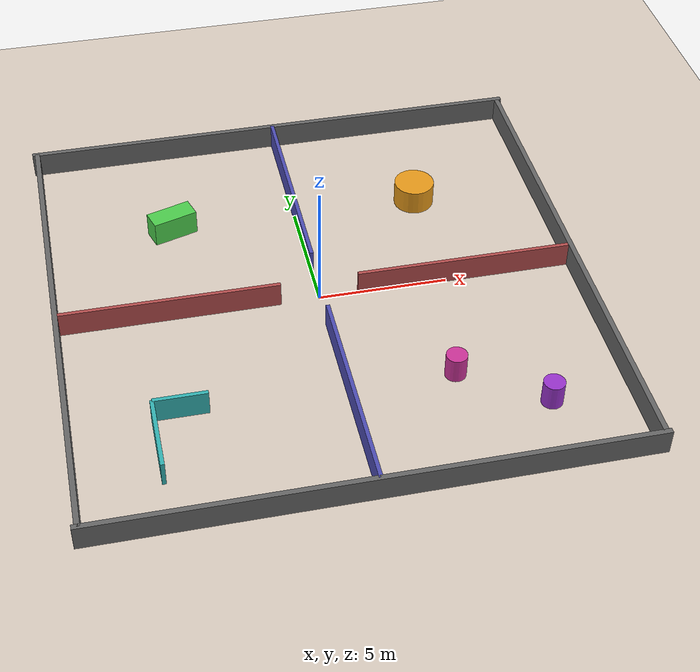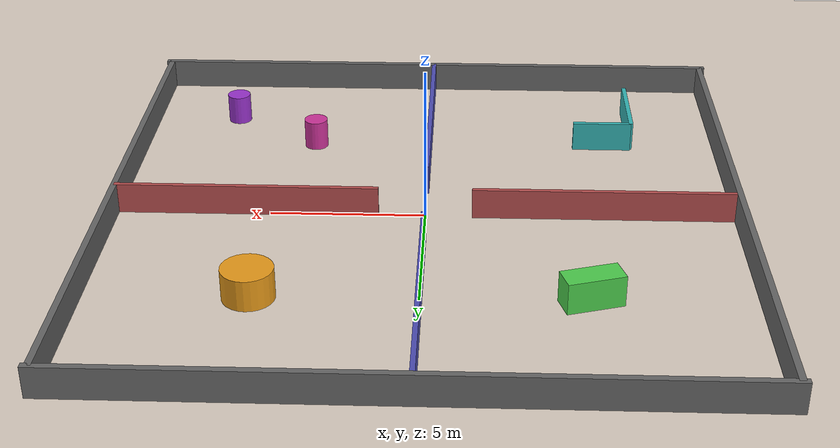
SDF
<?xml version="1.0" ?>
<!-- WORLD: Cross — Plus-sign shape dividing arena into 4 rooms with center hub -->
<sdf version="1.6">
  <world name="default">
    <physics name="1ms" type="ignored"><max_step_size>0.001</max_step_size><real_time_factor>1.0</real_time_factor></physics>
    <plugin filename="libignition-gazebo-physics-system.so" name="ignition::gazebo::systems::Physics"/>
    <plugin filename="libignition-gazebo-user-commands-system.so" name="ignition::gazebo::systems::UserCommands"/>
    <plugin filename="libignition-gazebo-scene-broadcaster-system.so" name="ignition::gazebo::systems::SceneBroadcaster"/>
    <light type="directional" name="sun"><cast_shadows>true</cast_shadows><pose>0 0 10 0 0 0</pose><diffuse>0.85 0.85 0.85 1</diffuse><specular>0.2 0.2 0.2 1</specular><attenuation><range>1000</range><constant>0.9</constant><linear>0.01</linear><quadratic>0.001</quadratic></attenuation><direction>-0.5 0.1 -0.9</direction></light>
    <model name="ground"><static>true</static><link name="l"><collision name="c"><geometry><plane><normal>0 0 1</normal><size>100 100</size></plane></geometry></collision><visual name="v"><geometry><plane><normal>0 0 1</normal><size>100 100</size></plane></geometry><material><ambient>0.85 0.8 0.75 1</ambient><diffuse>0.85 0.8 0.75 1</diffuse></material></visual></link></model>
    <model name="wn"><static>true</static><pose>0 10 0.5 0 0 0</pose><link name="l"><collision name="c"><geometry><box><size>20.4 0.2 1</size></box></geometry></collision><visual name="v"><geometry><box><size>20.4 0.2 1</size></box></geometry><material><ambient>0.4 0.4 0.4 1</ambient><diffuse>0.4 0.4 0.4 1</diffuse></material></visual></link></model>
    <model name="ws"><static>true</static><pose>0 -10 0.5 0 0 0</pose><link name="l"><collision name="c"><geometry><box><size>20.4 0.2 1</size></box></geometry></collision><visual name="v"><geometry><box><size>20.4 0.2 1</size></box></geometry><material><ambient>0.4 0.4 0.4 1</ambient><diffuse>0.4 0.4 0.4 1</diffuse></material></visual></link></model>
    <model name="we"><static>true</static><pose>10 0 0.5 0 0 0</pose><link name="l"><collision name="c"><geometry><box><size>0.2 20 1</size></box></geometry></collision><visual name="v"><geometry><box><size>0.2 20 1</size></box></geometry><material><ambient>0.4 0.4 0.4 1</ambient><diffuse>0.4 0.4 0.4 1</diffuse></material></visual></link></model>
    <model name="ww"><static>true</static><pose>-10 0 0.5 0 0 0</pose><link name="l"><collision name="c"><geometry><box><size>0.2 20 1</size></box></geometry></collision><visual name="v"><geometry><box><size>0.2 20 1</size></box></geometry><material><ambient>0.4 0.4 0.4 1</ambient><diffuse>0.4 0.4 0.4 1</diffuse></material></visual></link></model>

    <!-- Cross walls: N-S arm with doorways, E-W arm with doorways -->
    <!-- North arm — left and right (gap at center 1.5m) -->
    <model name="nl"><static>true</static><pose>-5.75 0 0.5 0 0 0</pose><link name="l"><collision name="c"><geometry><box><size>8.5 0.15 1</size></box></geometry></collision><visual name="v"><geometry><box><size>8.5 0.15 1</size></box></geometry><material><ambient>0.7 0.3 0.3 1</ambient><diffuse>0.7 0.3 0.3 1</diffuse></material></visual></link></model>
    <model name="nr"><static>true</static><pose>5.75 0 0.5 0 0 0</pose><link name="l"><collision name="c"><geometry><box><size>8.5 0.15 1</size></box></geometry></collision><visual name="v"><geometry><box><size>8.5 0.15 1</size></box></geometry><material><ambient>0.7 0.3 0.3 1</ambient><diffuse>0.7 0.3 0.3 1</diffuse></material></visual></link></model>
    <!-- East arm — top and bottom (gap at center 1.5m) -->
    <model name="et"><static>true</static><pose>0 5.75 0.5 0 0 0</pose><link name="l"><collision name="c"><geometry><box><size>0.15 8.5 1</size></box></geometry></collision><visual name="v"><geometry><box><size>0.15 8.5 1</size></box></geometry><material><ambient>0.3 0.3 0.7 1</ambient><diffuse>0.3 0.3 0.7 1</diffuse></material></visual></link></model>
    <model name="eb"><static>true</static><pose>0 -5.75 0.5 0 0 0</pose><link name="l"><collision name="c"><geometry><box><size>0.15 8.5 1</size></box></geometry></collision><visual name="v"><geometry><box><size>0.15 8.5 1</size></box></geometry><material><ambient>0.3 0.3 0.7 1</ambient><diffuse>0.3 0.3 0.7 1</diffuse></material></visual></link></model>

    <!-- Room obstacles: one unique shape per quadrant -->
    <!-- NE room: large cylinder -->
    <model name="ne_ob"><static>true</static><pose>5 5 0.5 0 0 0</pose><link name="l"><collision name="c"><geometry><cylinder><radius>0.8</radius><length>1</length></cylinder></geometry></collision><visual name="v"><geometry><cylinder><radius>0.8</radius><length>1</length></cylinder></geometry><material><ambient>0.9 0.6 0.1 1</ambient><diffuse>0.9 0.6 0.1 1</diffuse></material></visual></link></model>
    <!-- NW room: rectangle -->
    <model name="nw_ob"><static>true</static><pose>-5 5 0.5 0 0 0.3</pose><link name="l"><collision name="c"><geometry><box><size>1.8 0.8 1</size></box></geometry></collision><visual name="v"><geometry><box><size>1.8 0.8 1</size></box></geometry><material><ambient>0.3 0.8 0.3 1</ambient><diffuse>0.3 0.8 0.3 1</diffuse></material></visual></link></model>
    <!-- SE room: two small cylinders -->
    <model name="se1"><static>true</static><pose>4 -5 0.5 0 0 0</pose><link name="l"><collision name="c"><geometry><cylinder><radius>0.4</radius><length>1</length></cylinder></geometry></collision><visual name="v"><geometry><cylinder><radius>0.4</radius><length>1</length></cylinder></geometry><material><ambient>0.8 0.2 0.6 1</ambient><diffuse>0.8 0.2 0.6 1</diffuse></material></visual></link></model>
    <model name="se2"><static>true</static><pose>7 -7 0.5 0 0 0</pose><link name="l"><collision name="c"><geometry><cylinder><radius>0.4</radius><length>1</length></cylinder></geometry></collision><visual name="v"><geometry><cylinder><radius>0.4</radius><length>1</length></cylinder></geometry><material><ambient>0.6 0.2 0.8 1</ambient><diffuse>0.6 0.2 0.8 1</diffuse></material></visual></link></model>
    <!-- SW room: L-shaped walls -->
    <model name="sw1"><static>true</static><pose>-6 -5 0.5 0 0 0</pose><link name="l"><collision name="c"><geometry><box><size>2.0 0.15 1</size></box></geometry></collision><visual name="v"><geometry><box><size>2.0 0.15 1</size></box></geometry><material><ambient>0.2 0.7 0.7 1</ambient><diffuse>0.2 0.7 0.7 1</diffuse></material></visual></link></model>
    <model name="sw2"><static>true</static><pose>-7 -6.5 0.5 0 0 0</pose><link name="l"><collision name="c"><geometry><box><size>0.15 3.0 1</size></box></geometry></collision><visual name="v"><geometry><box><size>0.15 3.0 1</size></box></geometry><material><ambient>0.2 0.7 0.7 1</ambient><diffuse>0.2 0.7 0.7 1</diffuse></material></visual></link></model>
  </world>
</sdf>
